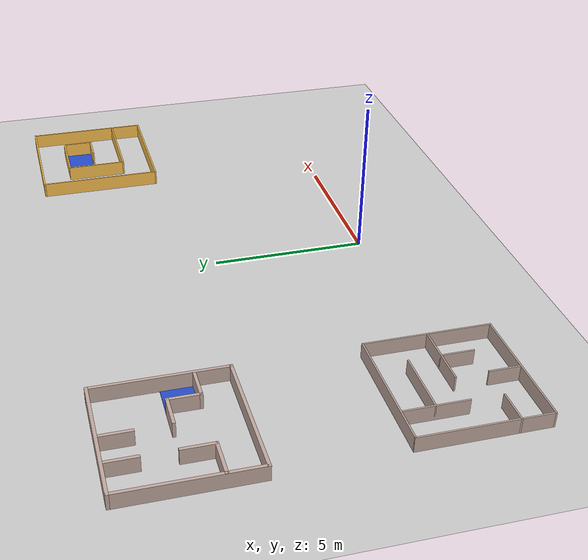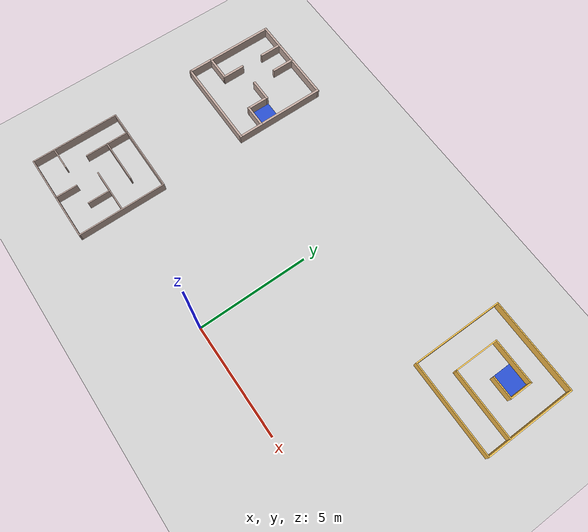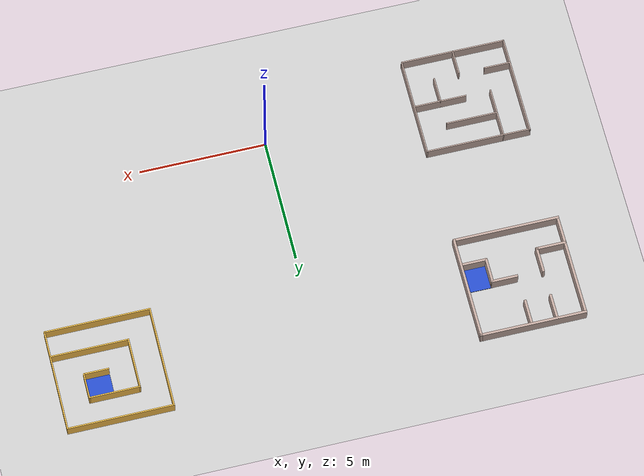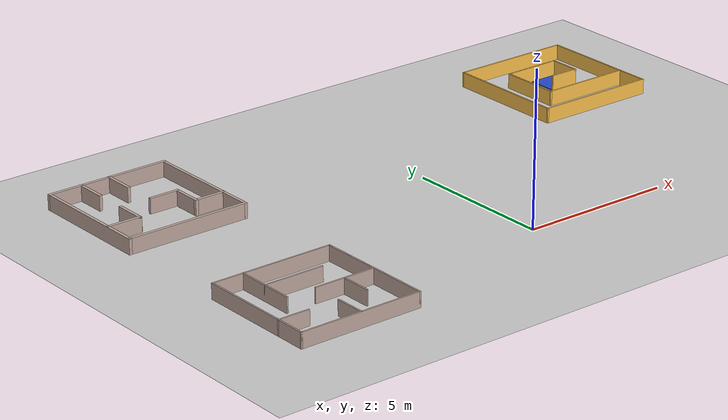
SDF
<sdf version="1.6">
 <world name="default">
  <model name="ground_plane">
   <static>1</static>
   <link name="link">
    <collision name="collision">
     <geometry><plane><normal>0 0 1</normal><size>100 100</size></plane></geometry>
     <surface><friction><ode><mu>100</mu><mu2>50</mu2></ode></friction></surface>
    </collision>
    <visual name="visual">
     <cast_shadows>0</cast_shadows>
     <geometry><plane><normal>0 0 1</normal><size>100 100</size></plane></geometry>
     <material>
      <script><uri>file://media/materials/scripts/gazebo.material</uri><name>Gazebo/Grey</name></script>
     </material>
    </visual>
   </link>
  </model>
  <model name="maze-two">
   <pose>-8.05 7.98 0 0 -0 0</pose>
   <link name="Wall_14">
    <collision name="Wall_14_Collision">
     <geometry><box><size>4.20038 0.1 0.5</size></box></geometry>
     <pose>0 0 0.25 0 -0 0</pose>
    </collision>
    <visual name="Wall_14_Visual">
     <pose>0 0 0.25 0 -0 0</pose>
     <geometry><box><size>4.20038 0.1 0.5</size></box></geometry>
     <material>
      <script><uri>file://media/materials/scripts/gazebo.material</uri><name>Gazebo/Grey</name></script>
      <ambient>0.760784 0.662745 0.627451 1</ambient>
     </material>
    </visual>
    <pose>2.05 0 0 0 0 -1.5708</pose>
   </link>
   <link name="Wall_15">
    <collision name="Wall_15_Collision">
     <geometry><box><size>4.19965 0.1 0.5</size></box></geometry>
     <pose>0 0 0.25 0 -0 0</pose>
    </collision>
    <visual name="Wall_15_Visual">
     <pose>0 0 0.25 0 -0 0</pose>
     <geometry><box><size>4.19965 0.1 0.5</size></box></geometry>
     <material>
      <script><uri>file://media/materials/scripts/gazebo.material</uri><name>Gazebo/Grey</name></script>
      <ambient>0.760784 0.662745 0.627451 1</ambient>
     </material>
    </visual>
    <pose>0 -2.05 0 0 -0 3.14159</pose>
   </link>
   <link name="Wall_16">
    <collision name="Wall_16_Collision">
     <geometry><box><size>4.2 0.1 0.5</size></box></geometry>
     <pose>0 0 0.25 0 -0 0</pose>
    </collision>
    <visual name="Wall_16_Visual">
     <pose>0 0 0.25 0 -0 0</pose>
     <geometry><box><size>4.2 0.1 0.5</size></box></geometry>
     <material>
      <script><uri>file://media/materials/scripts/gazebo.material</uri><name>Gazebo/Grey</name></script>
      <ambient>0.760784 0.662745 0.627451 1</ambient>
     </material>
    </visual>
    <pose>-2.05 0 0 0 -0 1.5708</pose>
   </link>
   <link name="Wall_18">
    <collision name="Wall_18_Collision">
     <geometry><box><size>4.20036 0.1 0.5</size></box></geometry>
     <pose>0 0 0.25 0 -0 0</pose>
    </collision>
    <visual name="Wall_18_Visual">
     <pose>0 0 0.25 0 -0 0</pose>
     <geometry><box><size>4.20036 0.1 0.5</size></box></geometry>
     <material>
      <script><uri>file://media/materials/scripts/gazebo.material</uri><name>Gazebo/Grey</name></script>
      <ambient>0.760784 0.662745 0.627451 1</ambient>
     </material>
    </visual>
    <pose>0 2.05 0 0 -0 0</pose>
   </link>
   <link name="Wall_27">
    <collision name="Wall_27_Collision">
     <geometry><box><size>1.201 0.1 0.5</size></box></geometry>
     <pose>0 0 0.25 0 -0 0</pose>
    </collision>
    <visual name="Wall_27_Visual">
     <pose>0 0 0.25 0 -0 0</pose>
     <geometry><box><size>1.201 0.1 0.5</size></box></geometry>
     <material>
      <script><uri>file://media/materials/scripts/gazebo.material</uri><name>Gazebo/Grey</name></script>
      <ambient>0.760784 0.662745 0.627451 1</ambient>
     </material>
    </visual>
    <pose>-1.4855 -0.955 0 0 -0 0</pose>
   </link>
   <link name="Wall_29">
    <collision name="Wall_29_Collision">
     <geometry><box><size>1.05 0.1 0.5</size></box></geometry>
     <pose>0 0 0.25 0 -0 0</pose>
    </collision>
    <visual name="Wall_29_Visual">
     <pose>0 0 0.25 0 -0 0</pose>
     <geometry><box><size>1.05 0.1 0.5</size></box></geometry>
     <material>
      <script><uri>file://media/materials/scripts/gazebo.material</uri><name>Gazebo/Grey</name></script>
      <ambient>0.760784 0.662745 0.627451 1</ambient>
     </material>
    </visual>
    <pose>-0.935 -0.48 0 0 -0 1.5708</pose>
   </link>
   <link name="Wall_31">
    <collision name="Wall_31_Collision">
     <geometry><box><size>1.06 0.1 0.5</size></box></geometry>
     <pose>0 0 0.25 0 -0 0</pose>
    </collision>
    <visual name="Wall_31_Visual">
     <pose>0 0 0.25 0 -0 0</pose>
     <geometry><box><size>1.06 0.1 0.5</size></box></geometry>
     <material>
      <script><uri>file://media/materials/scripts/gazebo.material</uri><name>Gazebo/Grey</name></script>
      <ambient>0.760784 0.662745 0.627451 1</ambient>
     </material>
    </visual>
    <pose>1.545 -0.973 0 0 -0 3.14159</pose>
   </link>
   <link name="Wall_33">
    <collision name="Wall_33_Collision">
     <geometry><box><size>1.05 0.1 0.5</size></box></geometry>
     <pose>0 0 0.25 0 -0 0</pose>
    </collision>
    <visual name="Wall_33_Visual">
     <pose>0 0 0.25 0 -0 0</pose>
     <geometry><box><size>1.05 0.1 0.5</size></box></geometry>
     <material>
      <script><uri>file://media/materials/scripts/gazebo.material</uri><name>Gazebo/Grey</name></script>
      <ambient>0.760784 0.662745 0.627451 1</ambient>
     </material>
    </visual>
    <pose>1.065 -0.498 0 0 -0 1.5708</pose>
   </link>
   <link name="Wall_35">
    <collision name="Wall_35_Collision">
     <geometry><box><size>1.05 0.1 0.5</size></box></geometry>
     <pose>0 0 0.25 0 -0 0</pose>
    </collision>
    <visual name="Wall_35_Visual">
     <pose>0 0 0.25 0 -0 0</pose>
     <geometry><box><size>1.05 0.1 0.5</size></box></geometry>
     <material>
      <script><uri>file://media/materials/scripts/gazebo.material</uri><name>Gazebo/Grey</name></script>
      <ambient>0.760784 0.662745 0.627451 1</ambient>
     </material>
    </visual>
    <pose>0.59 -0.023 0 0 -0 3.14159</pose>
   </link>
   <link name="Wall_41">
    <collision name="Wall_41_Collision">
     <geometry><box><size>1.06 0.1 0.5</size></box></geometry>
     <pose>0 0 0.25 0 -0 0</pose>
    </collision>
    <visual name="Wall_41_Visual">
     <pose>0 0 0.25 0 -0 0</pose>
     <geometry><box><size>1.06 0.1 0.5</size></box></geometry>
     <material>
      <script><uri>file://media/materials/scripts/gazebo.material</uri><name>Gazebo/Grey</name></script>
      <ambient>0.760784 0.662745 0.627451 1</ambient>
     </material>
    </visual>
    <pose>-0.935 1.565 0 0 -0 1.5708</pose>
   </link>
   <link name="Wall_44">
    <collision name="Wall_44_Collision">
     <geometry><box><size>1.05 0.1 0.5</size></box></geometry>
     <pose>0 0 0.25 0 -0 0</pose>
    </collision>
    <visual name="Wall_44_Visual">
     <pose>0 0 0.25 0 -0 0</pose>
     <geometry><box><size>1.05 0.1 0.5</size></box></geometry>
     <material>
      <script><uri>file://media/materials/scripts/gazebo.material</uri><name>Gazebo/Grey</name></script>
      <ambient>0.760784 0.662745 0.627451 1</ambient>
     </material>
    </visual>
    <pose>0.065 1.552 0 0 -0 1.5708</pose>
   </link>
   <static>1</static>
  </model>
  <model name="maze-six">
   <pose>7.99961 8.01527 0 0 -0 0</pose>
   <link name="Wall_51">
    <collision name="Wall_51_Collision">
     <geometry><box><size>4.14 0.05 0.5</size></box></geometry>
     <pose>0 0 0.25 0 -0 0</pose>
    </collision>
    <visual name="Wall_51_Visual">
     <pose>0 0 0.25 0 -0 0</pose>
     <geometry><box><size>4.14 0.05 0.5</size></box></geometry>
     <material>
      <script><uri>file://media/materials/scripts/gazebo.material</uri><name>Gazebo/Grey</name></script>
      <ambient>1 0.764706 0.305882 1</ambient>
     </material>
    </visual>
    <pose>-2.05 0 0 0 0 -1.5708</pose>
   </link>
   <link name="Wall_53">
    <collision name="Wall_53_Collision">
     <geometry><box><size>4.15037 0.05 0.5</size></box></geometry>
     <pose>0 0 0.25 0 -0 0</pose>
    </collision>
    <visual name="Wall_53_Visual">
     <pose>0 0 0.25 0 -0 0</pose>
     <geometry><box><size>4.15037 0.05 0.5</size></box></geometry>
     <material>
      <script><uri>file://media/materials/scripts/gazebo.material</uri><name>Gazebo/Grey</name></script>
      <ambient>1 0.764706 0.305882 1</ambient>
     </material>
    </visual>
    <pose>0 -2.045 0 0 -0 0</pose>
   </link>
   <link name="Wall_54">
    <collision name="Wall_54_Collision">
     <geometry><box><size>4.13975 0.05 0.5</size></box></geometry>
     <pose>0 0 0.25 0 -0 0</pose>
    </collision>
    <visual name="Wall_54_Visual">
     <pose>0 0 0.25 0 -0 0</pose>
     <geometry><box><size>4.13975 0.05 0.5</size></box></geometry>
     <material>
      <script><uri>file://media/materials/scripts/gazebo.material</uri><name>Gazebo/Grey</name></script>
      <ambient>1 0.764706 0.305882 1</ambient>
     </material>
    </visual>
    <pose>2.05 0 0 0 -0 1.5708</pose>
   </link>
   <link name="Wall_55">
    <collision name="Wall_55_Collision">
     <geometry><box><size>4.15 0.05 0.5</size></box></geometry>
     <pose>0 0 0.25 0 -0 0</pose>
    </collision>
    <visual name="Wall_55_Visual">
     <pose>0 0 0.25 0 -0 0</pose>
     <geometry><box><size>4.15 0.05 0.5</size></box></geometry>
     <material>
      <script><uri>file://media/materials/scripts/gazebo.material</uri><name>Gazebo/Grey</name></script>
      <ambient>1 0.764706 0.305882 1</ambient>
     </material>
    </visual>
    <pose>0 2.045 0 0 -0 3.14159</pose>
   </link>
   <link name="Wall_59">
    <collision name="Wall_59_Collision">
     <geometry><box><size>3.05 0.05 0.5</size></box></geometry>
     <pose>0 0 0.25 0 -0 0</pose>
    </collision>
    <visual name="Wall_59_Visual">
     <pose>0 0 0.25 0 -0 0</pose>
     <geometry><box><size>3.05 0.05 0.5</size></box></geometry>
     <material>
      <script><uri>file://media/materials/scripts/gazebo.material</uri><name>Gazebo/Grey</name></script>
      <ambient>1 0.764706 0.305882 1</ambient>
     </material>
    </visual>
    <pose>0.526 -0.993 0 0 -0 3.14159</pose>
   </link>
   <link name="Wall_61">
    <collision name="Wall_61_Collision">
     <geometry><box><size>2.05 0.05 0.5</size></box></geometry>
     <pose>0 0 0.25 0 -0 0</pose>
    </collision>
    <visual name="Wall_61_Visual">
     <pose>0 0 0.25 0 -0 0</pose>
     <geometry><box><size>2.05 0.05 0.5</size></box></geometry>
     <material>
      <script><uri>file://media/materials/scripts/gazebo.material</uri><name>Gazebo/Grey</name></script>
      <ambient>1 0.764706 0.305882 1</ambient>
     </material>
    </visual>
    <pose>-0.974 0.007 0 0 -0 1.5708</pose>
   </link>
   <link name="Wall_63">
    <collision name="Wall_63_Collision">
     <geometry><box><size>2 0.05 0.5</size></box></geometry>
     <pose>0 0 0.25 0 -0 0</pose>
    </collision>
    <visual name="Wall_63_Visual">
     <pose>0 0 0.25 0 -0 0</pose>
     <geometry><box><size>2 0.05 0.5</size></box></geometry>
     <material>
      <script><uri>file://media/materials/scripts/gazebo.material</uri><name>Gazebo/Grey</name></script>
      <ambient>1 0.764706 0.305882 1</ambient>
     </material>
    </visual>
    <pose>0.001 1.007 0 0 -0 0</pose>
   </link>
   <link name="Wall_64">
    <collision name="Wall_64_Collision">
     <geometry><box><size>1.05 0.05 0.5</size></box></geometry>
     <pose>0 0 0.25 0 -0 0</pose>
    </collision>
    <visual name="Wall_64_Visual">
     <pose>0 0 0.25 0 -0 0</pose>
     <geometry><box><size>1.05 0.05 0.5</size></box></geometry>
     <material>
      <script><uri>file://media/materials/scripts/gazebo.material</uri><name>Gazebo/Grey</name></script>
      <ambient>1 0.764706 0.305882 1</ambient>
     </material>
    </visual>
    <pose>0.976 0.507 0 0 0 -1.5708</pose>
   </link>
   <link name="Wall_65">
    <collision name="Wall_65_Collision">
     <geometry><box><size>1 0.05 0.5</size></box></geometry>
     <pose>0 0 0.25 0 -0 0</pose>
    </collision>
    <visual name="Wall_65_Visual">
     <pose>0 0 0.25 0 -0 0</pose>
     <geometry><box><size>1 0.05 0.5</size></box></geometry>
     <material>
      <script><uri>file://media/materials/scripts/gazebo.material</uri><name>Gazebo/Grey</name></script>
      <ambient>1 0.764706 0.305882 1</ambient>
     </material>
    </visual>
    <pose>0.501 0.007 0 0 -0 3.14159</pose>
   </link>
   <static>1</static>
  </model>
  <model name="maze-five">
   <pose>-8 0 0 0 -0 0</pose>
   <link name="Wall_103">
    <collision name="Wall_103_Collision">
     <geometry><box><size>4.15 0.05 0.5</size></box></geometry>
     <pose>0 0 0.25 0 -0 0</pose>
    </collision>
    <visual name="Wall_103_Visual">
     <pose>0 0 0.25 0 -0 0</pose>
     <geometry><box><size>4.15 0.05 0.5</size></box></geometry>
     <material>
      <script><uri>file://media/materials/scripts/gazebo.material</uri><name>Gazebo/Grey</name></script>
      <ambient>0.760784 0.662745 0.627451 1</ambient>
     </material>
    </visual>
    <pose>0 -2 0 0 -0 0</pose>
   </link>
   <link name="Wall_105">
    <collision name="Wall_105_Collision">
     <geometry><box><size>4.05 0.05 0.5</size></box></geometry>
     <pose>0 0 0.25 0 -0 0</pose>
    </collision>
    <visual name="Wall_105_Visual">
     <pose>0 0 0.25 0 -0 0</pose>
     <geometry><box><size>4.05 0.05 0.5</size></box></geometry>
     <material>
      <script><uri>file://media/materials/scripts/gazebo.material</uri><name>Gazebo/Grey</name></script>
      <ambient>0.760784 0.662745 0.627451 1</ambient>
     </material>
    </visual>
    <pose>-2.05 0 0 0 -0 1.5708</pose>
   </link>
   <link name="Wall_106">
    <collision name="Wall_106_Collision">
     <geometry><box><size>4.15 0.05 0.5</size></box></geometry>
     <pose>0 0 0.25 0 -0 0</pose>
    </collision>
    <visual name="Wall_106_Visual">
     <pose>0 0 0.25 0 -0 0</pose>
     <geometry><box><size>4.15 0.05 0.5</size></box></geometry>
     <material>
      <script><uri>file://media/materials/scripts/gazebo.material</uri><name>Gazebo/Grey</name></script>
      <ambient>0.760784 0.662745 0.627451 1</ambient>
     </material>
    </visual>
    <pose>0 2 0 0 -0 0</pose>
   </link>
   <link name="Wall_107">
    <collision name="Wall_107_Collision">
     <geometry><box><size>4.05 0.05 0.5</size></box></geometry>
     <pose>0 0 0.25 0 -0 0</pose>
    </collision>
    <visual name="Wall_107_Visual">
     <pose>0 0 0.25 0 -0 0</pose>
     <geometry><box><size>4.05 0.05 0.5</size></box></geometry>
     <material>
      <script><uri>file://media/materials/scripts/gazebo.material</uri><name>Gazebo/Grey</name></script>
      <ambient>0.760784 0.662745 0.627451 1</ambient>
     </material>
    </visual>
    <pose>2.05 0 0 0 0 -1.5708</pose>
   </link>
   <link name="Wall_109">
    <collision name="Wall_109_Collision">
     <geometry><box><size>1.012 0.05 0.5</size></box></geometry>
     <pose>0 0 0.25 0 -0 0</pose>
    </collision>
    <visual name="Wall_109_Visual">
     <pose>0 0 0.25 0 -0 0</pose>
     <geometry><box><size>1.012 0.05 0.5</size></box></geometry>
     <material>
      <script><uri>file://media/materials/scripts/gazebo.material</uri><name>Gazebo/Grey</name></script>
      <ambient>0.760784 0.662745 0.627451 1</ambient>
     </material>
    </visual>
    <pose>0 -1.511 0 0 -0 1.5708</pose>
   </link>
   <link name="Wall_111">
    <collision name="Wall_111_Collision">
     <geometry><box><size>1.07 0.05 0.5</size></box></geometry>
     <pose>0 0 0.25 0 -0 0</pose>
    </collision>
    <visual name="Wall_111_Visual">
     <pose>0 0 0.25 0 -0 0</pose>
     <geometry><box><size>1.07 0.05 0.5</size></box></geometry>
     <material>
      <script><uri>file://media/materials/scripts/gazebo.material</uri><name>Gazebo/Grey</name></script>
      <ambient>0.760784 0.662745 0.627451 1</ambient>
     </material>
    </visual>
    <pose>-1.54 -1 0 0 -0 0</pose>
   </link>
   <link name="Wall_113">
    <collision name="Wall_113_Collision">
     <geometry><box><size>2.05 0.05 0.5</size></box></geometry>
     <pose>0 0 0.25 0 -0 0</pose>
    </collision>
    <visual name="Wall_113_Visual">
     <pose>0 0 0.25 0 -0 0</pose>
     <geometry><box><size>2.05 0.05 0.5</size></box></geometry>
     <material>
      <script><uri>file://media/materials/scripts/gazebo.material</uri><name>Gazebo/Grey</name></script>
      <ambient>0.760784 0.662745 0.627451 1</ambient>
     </material>
    </visual>
    <pose>-1 1 0 0 0 -1.5708</pose>
   </link>
   <link name="Wall_115">
    <collision name="Wall_115_Collision">
     <geometry><box><size>2.05 0.05 0.5</size></box></geometry>
     <pose>0 0 0.25 0 -0 0</pose>
    </collision>
    <visual name="Wall_115_Visual">
     <pose>0 0 0.25 0 -0 0</pose>
     <geometry><box><size>2.05 0.05 0.5</size></box></geometry>
     <material>
      <script><uri>file://media/materials/scripts/gazebo.material</uri><name>Gazebo/Grey</name></script>
      <ambient>0.760784 0.662745 0.627451 1</ambient>
     </material>
    </visual>
    <pose>0 1 0 0 -0 0</pose>
   </link>
   <link name="Wall_117">
    <collision name="Wall_117_Collision">
     <geometry><box><size>2.05 0.05 0.5</size></box></geometry>
     <pose>0 0 0.25 0 -0 0</pose>
    </collision>
    <visual name="Wall_117_Visual">
     <pose>0 0 0.25 0 -0 0</pose>
     <geometry><box><size>2.05 0.05 0.5</size></box></geometry>
     <material>
      <script><uri>file://media/materials/scripts/gazebo.material</uri><name>Gazebo/Grey</name></script>
      <ambient>0.760784 0.662745 0.627451 1</ambient>
     </material>
    </visual>
    <pose>1 0 0 0 -0 3.14159</pose>
   </link>
   <link name="Wall_119">
    <collision name="Wall_119_Collision">
     <geometry><box><size>1.05 0.05 0.5</size></box></geometry>
     <pose>0 0 0.25 0 -0 0</pose>
    </collision>
    <visual name="Wall_119_Visual">
     <pose>0 0 0.25 0 -0 0</pose>
     <geometry><box><size>1.05 0.05 0.5</size></box></geometry>
     <material>
      <script><uri>file://media/materials/scripts/gazebo.material</uri><name>Gazebo/Grey</name></script>
      <ambient>0.760784 0.662745 0.627451 1</ambient>
     </material>
    </visual>
    <pose>1 -0.5 0 0 0 -1.5708</pose>
   </link>
   <static>1</static>
  </model>
  <model name="goal_sign_0_0_clone">
   <link name="link">
    <pose>0.176513 2.2342 -0.423865 0 -0 0</pose>
    <inertial>
     <mass>0.0466183</mass>
     <inertia>
      <ixx>0.00346603</ixx>
      <ixy>0</ixy>
      <ixz>0</ixz>
      <iyy>0.00355102</iyy>
      <iyz>0</iyz>
      <izz>0.00699622</izz>
     </inertia>
    </inertial>
    <visual name="visual">
     <geometry><box><size>0.954665 0.942957 0.051771</size></box></geometry>
     <material>
      <script><name>Gazebo/Blue</name><uri>file://media/materials/scripts/gazebo.material</uri></script>
      <ambient>0.1 0.1 0.7 1</ambient>
      <diffuse>0.7 0.7 0.7 1</diffuse>
      <specular>0.01 0.01 0.01 1</specular>
      <emissive>0 0 0 1</emissive>
      <shader type="vertex"><normal_map>__default__</normal_map></shader>
     </material>
    </visual>
    <collision name="collision">
     <geometry><box><size>0.954665 0.942957 0.051771</size></box></geometry>
     <surface>
      <friction>
       <ode><mu>1</mu><mu2>1</mu2><fdir1>0 0 0</fdir1><slip1>0</slip1><slip2>0</slip2></ode>
       <torsional>
        <coefficient>1</coefficient>
        <patch_radius>0</patch_radius>
        <surface_radius>0</surface_radius>
        <use_patch_radius>1</use_patch_radius>
        <ode><slip>0</slip></ode>
       </torsional>
      </friction>
      <bounce><restitution_coefficient>0</restitution_coefficient><threshold>1e+06</threshold></bounce>
      <contact>
       <collide_without_contact>0</collide_without_contact>
       <collide_without_contact_bitmask>1</collide_without_contact_bitmask>
       <collide_bitmask>1</collide_bitmask>
       <ode>
        <soft_cfm>0</soft_cfm>
        <soft_erp>0.2</soft_erp>
        <kp>1e+13</kp>
        <kd>1</kd>
        <max_vel>0.01</max_vel>
        <min_depth>0</min_depth>
       </ode>
       <bullet>
        <split_impulse>1</split_impulse>
        <split_impulse_penetration_threshold>-0.01</split_impulse_penetration_threshold>
        <soft_cfm>0</soft_cfm>
        <soft_erp>0.2</soft_erp>
        <kp>1e+13</kp>
        <kd>1</kd>
       </bullet>
      </contact>
     </surface>
    </collision>
   </link>
   <static>1</static>
   <pose>8.30195 6.29078 0.403407 0 -0 0</pose>
  </model>
  <model name="goal_sign_0_0_clone_2">
   <link name="link">
    <pose>0.176513 2.2342 -0.423865 0 -0 0</pose>
    <inertial>
     <mass>0.0466183</mass>
     <inertia>
      <ixx>0.00346603</ixx>
      <ixy>0</ixy>
      <ixz>0</ixz>
      <iyy>0.00355102</iyy>
      <iyz>0</iyz>
      <izz>0.00699622</izz>
     </inertia>
    </inertial>
    <visual name="visual">
     <geometry><box><size>0.954665 0.942957 0.051771</size></box></geometry>
     <material>
      <script><name>Gazebo/Blue</name><uri>file://media/materials/scripts/gazebo.material</uri></script>
      <ambient>0.1 0.1 0.7 1</ambient>
      <diffuse>0.7 0.7 0.7 1</diffuse>
      <specular>0.01 0.01 0.01 1</specular>
      <emissive>0 0 0 1</emissive>
      <shader type="vertex"><normal_map>__default__</normal_map></shader>
     </material>
    </visual>
    <collision name="collision">
     <geometry><box><size>0.954665 0.942957 0.051771</size></box></geometry>
     <surface>
      <friction>
       <ode><mu>1</mu><mu2>1</mu2><fdir1>0 0 0</fdir1><slip1>0</slip1><slip2>0</slip2></ode>
       <torsional>
        <coefficient>1</coefficient>
        <patch_radius>0</patch_radius>
        <surface_radius>0</surface_radius>
        <use_patch_radius>1</use_patch_radius>
        <ode><slip>0</slip></ode>
       </torsional>
      </friction>
      <bounce><restitution_coefficient>0</restitution_coefficient><threshold>1e+06</threshold></bounce>
      <contact>
       <collide_without_contact>0</collide_without_contact>
       <collide_without_contact_bitmask>1</collide_without_contact_bitmask>
       <collide_bitmask>1</collide_bitmask>
       <ode>
        <soft_cfm>0</soft_cfm>
        <soft_erp>0.2</soft_erp>
        <kp>1e+13</kp>
        <kd>1</kd>
        <max_vel>0.01</max_vel>
        <min_depth>0</min_depth>
       </ode>
       <bullet>
        <split_impulse>1</split_impulse>
        <split_impulse_penetration_threshold>-0.01</split_impulse_penetration_threshold>
        <soft_cfm>0</soft_cfm>
        <soft_erp>0.2</soft_erp>
        <kp>1e+13</kp>
        <kd>1</kd>
       </bullet>
      </contact>
     </surface>
    </collision>
   </link>
   <static>1</static>
   <pose>-6.70372 5.29455 0.403407 0 -0 0</pose>
  </model>
 </world>
</sdf>
